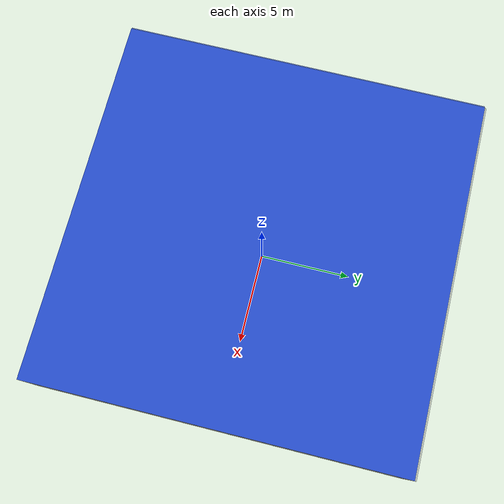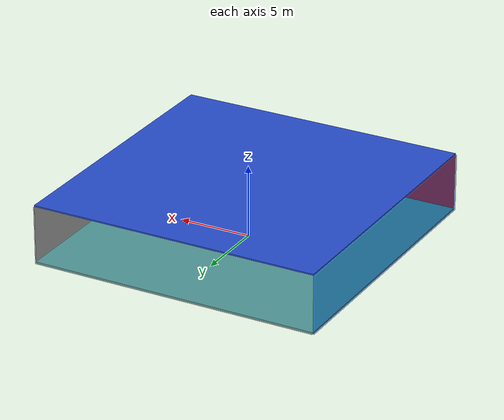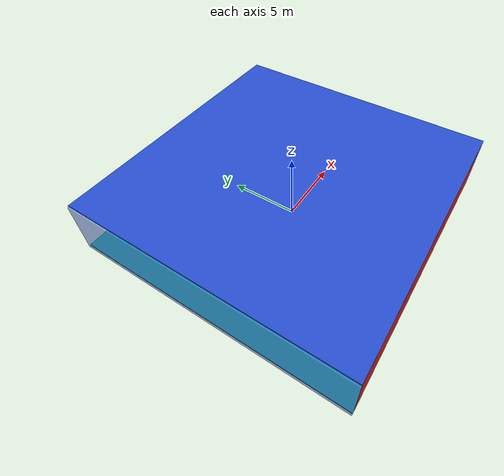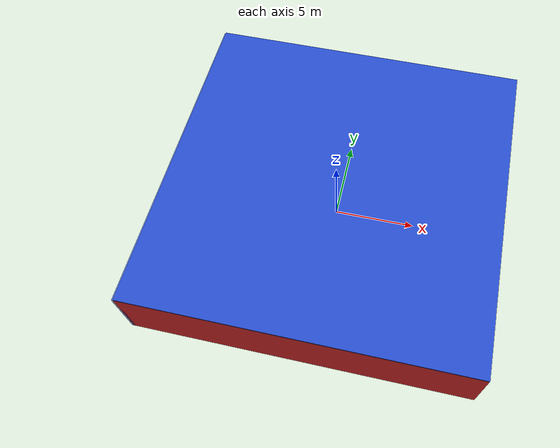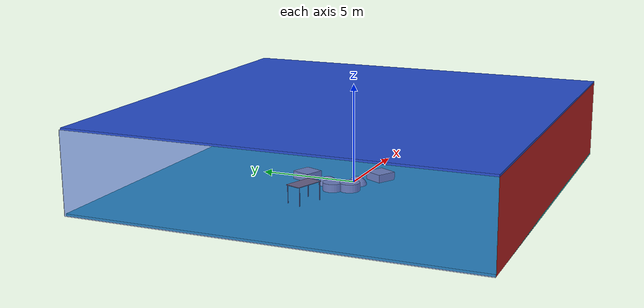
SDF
<sdf version="1.4">
 <world name="default">
  <physics type="ode">
   <max_step_size>0.001</max_step_size>
   <real_time_factor>1</real_time_factor>
   <real_time_update_rate>1000</real_time_update_rate>
   <gravity>0 0 -9.8</gravity>
  </physics>
  <scene><ambient>0.4 0.4 0.4 1</ambient><background>0.7 0.7 0.7 1</background><shadows>1</shadows></scene>
  <model name="Surrounding">
   <static>1</static>
   <link name="Ceiling">
    <collision name="Ceiling_Collision"><geometry><box><size>20 20 0.1</size></box></geometry></collision>
    <visual name="Ceiling_Visual">
     <geometry><box><size>20 20 0.1</size></box></geometry>
     <material>
      <script><uri>file://media/materials/scripts/gazebo.material</uri><name>Gazebo/Blue</name></script>
     </material>
    </visual>
    <pose>0 0 4.05 0 0 0</pose>
   </link>
   <link name="Wall_South">
    <collision name="Wall_South_Collision">
     <geometry><box><size>20 0 4</size></box></geometry>
     <pose>0 0 2 0 -0 0</pose>
    </collision>
    <visual name="Wall_South_Visual">
     <pose>0 0 2 0 -0 0</pose>
     <geometry><box><size>20 0 4</size></box></geometry>
     <material>
      <script><uri>file://media/materials/scripts/gazebo.material</uri><name>Gazebo/Red</name></script>
     </material>
    </visual>
    <velocity_decay><linear>0</linear><angular>0</angular></velocity_decay>
    <pose>0 -10 0 0 -0 0</pose>
   </link>
   <link name="Wall_East">
    <collision name="Wall_21_Collision">
     <geometry><box><size>20 0 4</size></box></geometry>
     <pose>0 0 2 0 -0 0</pose>
    </collision>
    <visual name="Wall_21_Visual">
     <pose>0 0 2 0 -0 0</pose>
     <geometry><box><size>20 0 4</size></box></geometry>
     <material>
      <script><uri>file://media/materials/scripts/gazebo.material</uri><name>Gazebo/Grey</name></script>
     </material>
    </visual>
    <velocity_decay><linear>0</linear><angular>0</angular></velocity_decay>
    <pose>10 0 0 0 -0 1.5708</pose>
   </link>
   <link name="Wall_North">
    <collision name="Wall_22_Collision">
     <geometry><box><size>20 0.2 4</size></box></geometry>
     <pose>0 0 2 0 -0 0</pose>
    </collision>
    <visual name="Wall_22_Visual">
     <pose>0 0 2 0 -0 0</pose>
     <geometry><box><size>20 0.2 4</size></box></geometry>
     <material>
      <script><uri>file://media/materials/scripts/gazebo.material</uri><name>Gazebo/GreyTransparent</name></script>
     </material>
    </visual>
    <velocity_decay><linear>0</linear><angular>0</angular></velocity_decay>
    <pose>0 10 0 0 -0 0</pose>
   </link>
   <link name="Wall_West">
    <collision name="Wall_23_Collision">
     <geometry><box><size>20 0.2 4</size></box></geometry>
     <pose>0 0 2 0 -0 0</pose>
    </collision>
    <visual name="Wall_23_Visual">
     <pose>0 0 2 0 -0 0</pose>
     <geometry><box><size>20 0.2 4</size></box></geometry>
     <material>
      <script><uri>file://media/materials/scripts/gazebo.material</uri><name>Gazebo/BlueTransparent</name></script>
     </material>
    </visual>
    <velocity_decay><linear>0</linear><angular>0</angular></velocity_decay>
    <pose>-10 0 0 0 0 -1.5708</pose>
   </link>
   <link name="Ground_link">
    <collision name="collision">
     <pose>0 0 .05 0 -0 0</pose>
     <geometry><box><size>20 20 0.1</size></box></geometry>
    </collision>
    <visual name="visual">
     <pose>0 0 .05 0 -0 0</pose>
     <geometry><box><size>20 20 0.1</size></box></geometry>
     <material>
      <script><uri>file://media/materials/scripts/gazebo.material</uri><name>Gazebo/TurquoiseGlow</name></script>
     </material>
    </visual>
   </link>
   <static>1</static>
  </model>
  <spherical_coordinates>
   <surface_model>EARTH_WGS84</surface_model>
   <latitude_deg>0</latitude_deg>
   <longitude_deg>0</longitude_deg>
   <elevation>0</elevation>
   <heading_deg>0</heading_deg>
  </spherical_coordinates>
  <light name="lightball_0" type="diffuse">
   <diffuse>0.8 0.8 0.8 1</diffuse>
   <specular>0.2 0.2 0.2 1</specular>
   <attenuation>
    <range>100</range>
    <constant>0.7</constant>
    <linear>0.01</linear>
    <quadratic>0.001</quadratic>
   </attenuation>
   <direction>-0.5 0.1 -0.9</direction>
   <pose>-4.18821204047 -7.45329687871 2.55598069192 0 0 0</pose>
  </light>
  <light name="lightball_1" type="diffuse">
   <diffuse>0.8 0.8 0.8 1</diffuse>
   <specular>0.2 0.2 0.2 1</specular>
   <attenuation>
    <range>100</range>
    <constant>0.7</constant>
    <linear>0.01</linear>
    <quadratic>0.001</quadratic>
   </attenuation>
   <direction>-0.5 0.1 -0.9</direction>
   <pose>-7.4216796033 3.93770037323 0.610294501327 0 0 0</pose>
  </light>
  <light name="lightball_2" type="diffuse">
   <diffuse>0.8 0.8 0.8 1</diffuse>
   <specular>0.2 0.2 0.2 1</specular>
   <attenuation>
    <range>100</range>
    <constant>0.7</constant>
    <linear>0.01</linear>
    <quadratic>0.001</quadratic>
   </attenuation>
   <direction>-0.5 0.1 -0.9</direction>
   <pose>4.78188426493 -3.13984006955 3.3173386277 0 0 0</pose>
  </light>
  <light name="lightball_3" type="diffuse">
   <diffuse>0.8 0.8 0.8 1</diffuse>
   <specular>0.2 0.2 0.2 1</specular>
   <attenuation>
    <range>100</range>
    <constant>0.7</constant>
    <linear>0.01</linear>
    <quadratic>0.001</quadratic>
   </attenuation>
   <direction>-0.5 0.1 -0.9</direction>
   <pose>-1.32201157246 7.92832525455 1.56610771425 0 0 0</pose>
  </light>
  <light name="lightball_4" type="diffuse">
   <diffuse>0.8 0.8 0.8 1</diffuse>
   <specular>0.2 0.2 0.2 1</specular>
   <attenuation>
    <range>100</range>
    <constant>0.7</constant>
    <linear>0.01</linear>
    <quadratic>0.001</quadratic>
   </attenuation>
   <direction>-0.5 0.1 -0.9</direction>
   <pose>6.73507233775 -5.24169137554 0.835430441273 0 0 0</pose>
  </light>
  <light name="lightball_5" type="diffuse">
   <diffuse>0.8 0.8 0.8 1</diffuse>
   <specular>0.2 0.2 0.2 1</specular>
   <attenuation>
    <range>100</range>
    <constant>0.7</constant>
    <linear>0.01</linear>
    <quadratic>0.001</quadratic>
   </attenuation>
   <direction>-0.5 0.1 -0.9</direction>
   <pose>-3.26964880472 6.16152987084 2.62639211212 0 0 0</pose>
  </light>
  <light name="lightball_6" type="diffuse">
   <diffuse>0.8 0.8 0.8 1</diffuse>
   <specular>0.2 0.2 0.2 1</specular>
   <attenuation>
    <range>100</range>
    <constant>0.7</constant>
    <linear>0.01</linear>
    <quadratic>0.001</quadratic>
   </attenuation>
   <direction>-0.5 0.1 -0.9</direction>
   <pose>0.245110592016 -0.687942144839 3.38472022006 0 0 0</pose>
  </light>
  <light name="lightball_7" type="diffuse">
   <diffuse>0.8 0.8 0.8 1</diffuse>
   <specular>0.2 0.2 0.2 1</specular>
   <attenuation>
    <range>100</range>
    <constant>0.7</constant>
    <linear>0.01</linear>
    <quadratic>0.001</quadratic>
   </attenuation>
   <direction>-0.5 0.1 -0.9</direction>
   <pose>2.39611978462 -3.28909026042 2.86797414964 0 0 0</pose>
  </light>
  <light name="lightball_8" type="diffuse">
   <diffuse>0.8 0.8 0.8 1</diffuse>
   <specular>0.2 0.2 0.2 1</specular>
   <attenuation>
    <range>100</range>
    <constant>0.7</constant>
    <linear>0.01</linear>
    <quadratic>0.001</quadratic>
   </attenuation>
   <direction>-0.5 0.1 -0.9</direction>
   <pose>-1.25553589632 -7.55915872627 3.27059585143 0 0 0</pose>
  </light>
  <light name="lightball_9" type="diffuse">
   <diffuse>0.8 0.8 0.8 1</diffuse>
   <specular>0.2 0.2 0.2 1</specular>
   <attenuation>
    <range>100</range>
    <constant>0.7</constant>
    <linear>0.01</linear>
    <quadratic>0.001</quadratic>
   </attenuation>
   <direction>-0.5 0.1 -0.9</direction>
   <pose>-6.69207335818 2.21858242941 2.6550678861 0 0 0</pose>
  </light>
  <light name="lightball_10" type="diffuse">
   <diffuse>0.8 0.8 0.8 1</diffuse>
   <specular>0.2 0.2 0.2 1</specular>
   <attenuation>
    <range>100</range>
    <constant>0.7</constant>
    <linear>0.01</linear>
    <quadratic>0.001</quadratic>
   </attenuation>
   <direction>-0.5 0.1 -0.9</direction>
   <pose>7.31572041526 7.99411052882 3.35439370954 0 0 0</pose>
  </light>
  <include><uri>model://table</uri><pose>-4.21598685055 0.812922155297 0 0 0 2.80429969638</pose></include>
  <include>
   <uri>model://textured_shapes</uri>
   <pose>-0.633040315545 -0.425685832167 0 0 0 1.0542549787</pose>
  </include>
  <include>
   <uri>model://textured_shapes</uri>
   <pose>-1.13311497753 0.915386468265 0 0 0 2.75534065649</pose>
  </include>
  <include>
   <uri>model://textured_shapes</uri>
   <pose>7.22963978559 -1.99971644393 0 0 0 1.8571080758</pose>
  </include>
 </world>
</sdf>

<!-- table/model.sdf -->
<sdf version="1.5">
  <model name="table">
    <static>true</static>
    <link name="link">
      <collision name="surface">
        <pose>0 0 1.0 0 0 0</pose>
        <geometry>
          <box>
            <size>1.5 0.8 0.03</size>
          </box>
        </geometry>
        <surface>
          <friction>
            <ode>
              <mu>0.6</mu>
              <mu2>0.6</mu2>
            </ode>
          </friction>
        </surface>
      </collision>
      <visual name="visual1">
        <pose>0 0 1.0 0 0 0</pose>
        <geometry>
          <box>
            <size>1.5 0.8 0.03</size>
          </box>
        </geometry>
        <material>
          <script>
            <uri>model://media/materials/scripts/gazebo.material</uri>
            <name>Gazebo/Wood</name>
          </script>
        </material>
      </visual>
      <collision name="front_left_leg">
        <pose>0.68 0.38 0.5 0 0 0</pose>
        <geometry>
          <cylinder>
            <radius>0.02</radius>
            <length>1.0</length>
          </cylinder>
        </geometry>
      </collision>
      <visual name="front_left_leg">
        <pose>0.68 0.38 0.5 0 0 0</pose>
        <geometry>
          <cylinder>
            <radius>0.02</radius>
            <length>1.0</length>
          </cylinder>
        </geometry>
        <material>
          <script>
            <uri>model://media/materials/scripts/gazebo.material</uri>
            <name>Gazebo/Grey</name>
          </script>
        </material>
      </visual>
      <collision name="front_right_leg">
        <pose>0.68 -0.38 0.5 0 0 0</pose>
        <geometry>
          <cylinder>
            <radius>0.02</radius>
            <length>1.0</length>
          </cylinder>
        </geometry>
      </collision>
      <visual name="front_right_leg">
        <pose>0.68 -0.38 0.5 0 0 0</pose>
        <geometry>
          <cylinder>
            <radius>0.02</radius>
            <length>1.0</length>
          </cylinder>
        </geometry>
        <material>
          <script>
            <uri>model://media/materials/scripts/gazebo.material</uri>
            <name>Gazebo/Grey</name>
          </script>
        </material>
      </visual>
      <collision name="back_right_leg">
        <pose>-0.68 -0.38 0.5 0 0 0</pose>
        <geometry>
          <cylinder>
            <radius>0.02</radius>
            <length>1.0</length>
          </cylinder>
        </geometry>
      </collision>
      <visual name="back_right_leg">
        <pose>-0.68 -0.38 0.5 0 0 0</pose>
        <geometry>
          <cylinder>
            <radius>0.02</radius>
            <length>1.0</length>
          </cylinder>
        </geometry>
        <material>
          <script>
            <uri>model://media/materials/scripts/gazebo.material</uri>
            <name>Gazebo/Grey</name>
          </script>
        </material>
      </visual>
      <collision name="back_left_leg">
        <pose>-0.68 0.38 0.5 0 0 0</pose>
        <geometry>
          <cylinder>
            <radius>0.02</radius>
            <length>1.0</length>
          </cylinder>
        </geometry>
      </collision>
      <visual name="back_left_leg">
        <pose>-0.68 0.38 0.5 0 0 0</pose>
        <geometry>
          <cylinder>
            <radius>0.02</radius>
            <length>1.0</length>
          </cylinder>
        </geometry>
        <material>
          <script>
            <uri>model://media/materials/scripts/gazebo.material</uri>
            <name>Gazebo/Grey</name>
          </script>
        </material>
      </visual>
    </link>
  </model>
</sdf>

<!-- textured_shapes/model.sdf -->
<sdf version="1.6">
  <model name="textured_shapes">
    <pose>0 0 0.5 0 0 0</pose>
    <link name="box">
      <pose>0 -1.5 0 0 0 0</pose>
      <collision name="collision">
        <geometry>
          <box>
            <size>1 1 1</size>
          </box>
        </geometry>
      </collision>
      <visual name="visual">
        <geometry>
          <box>
            <size>1 1 1</size>
          </box>
        </geometry>
        <material>
          <script>
            <uri>model://../model_source/models/textured_shapes/materials/scripts</uri>
            <uri>model://../model_source/models/textured_shapes/materials/textures</uri>
            <name>TexturedShape/Squares</name>
          </script>
        </material>
      </visual>
    </link>
    <link name="sphere">
      <collision name="collision">
        <geometry>
          <sphere>
            <radius>0.5</radius>
          </sphere>
        </geometry>
      </collision>
      <visual name="visual">
        <geometry>
          <sphere>
            <radius>0.5</radius>
          </sphere>
        </geometry>
        <material>
          <script>
            <uri>model://../model_source/models/textured_shapes/materials/scripts</uri>
            <uri>model://../model_source/models/textured_shapes/materials/textures</uri>
            <name>TexturedShape/Squares</name>
          </script>
        </material>
      </visual>
    </link>
    <link name="cylinder">
      <pose>0 1.5 0 0 0 0</pose>
      <collision name="collision">
        <geometry>
          <cylinder>
            <radius>0.5</radius>
            <length>1</length>
          </cylinder>
        </geometry>
      </collision>
      <visual name="visual">
        <geometry>
          <cylinder>
            <radius>0.5</radius>
            <length>1</length>
          </cylinder>
        </geometry>
        <material>
          <script>
            <uri>model://../model_source/models/textured_shapes/materials/scripts</uri>
            <uri>model://../model_source/models/textured_shapes/materials/textures</uri>
            <name>TexturedShape/Squares</name>
          </script>
        </material>
      </visual>
    </link>
  </model>
</sdf>
